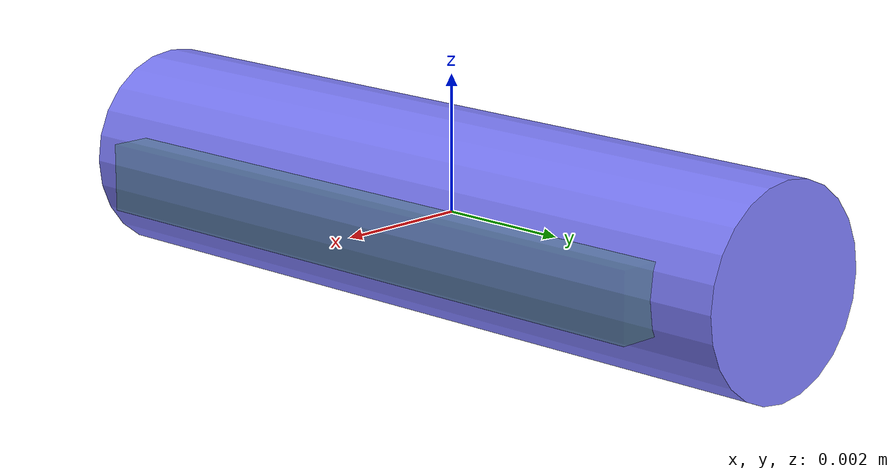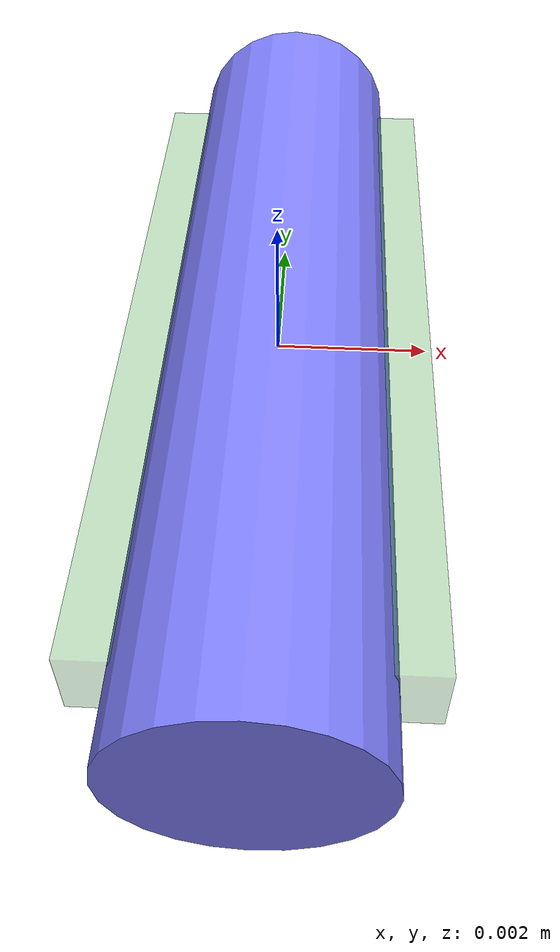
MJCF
<mujoco>
    <compiler angle="degree" coordinate="local" inertiafromgeom="true" />
    <option integrator="RK4" timestep="0.0001" />

    <worldbody>
         <light pos="0 -0.5 3"/>
            <body name="boxx" pos="0 0 0">
                <geom type="cylinder" size="1.5e-3 6.0e-3" rgba=".5 .5 1 1" zaxis="0 1 0" mass="0.512" />
                <joint name='motor' type='hinge' pos='0 0 0' axis='0 1 0' damping='3.6e-6'/>
                <site type="box" size="2e-3 0.5e-3 5e-3" rgba=".2 .6 .2 0.3" zaxis="0 1 0" />
            </body>
    </worldbody>

     <actuator>
        <motor name="motor" joint="motor" gear="1.8e-3"/>
    </actuator>
</mujoco>
